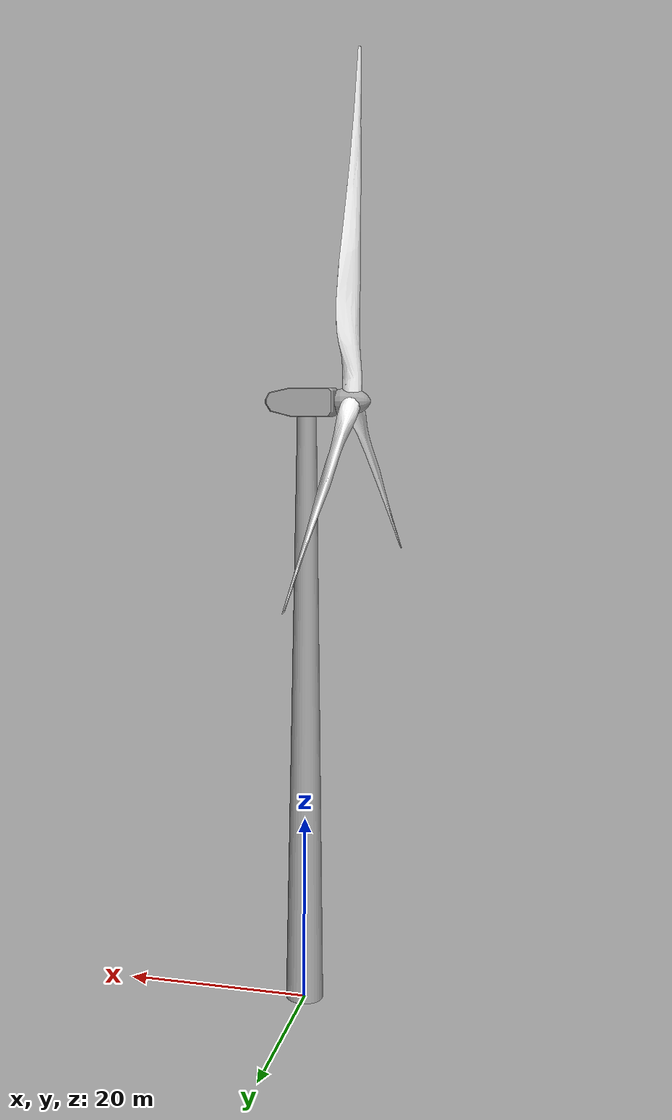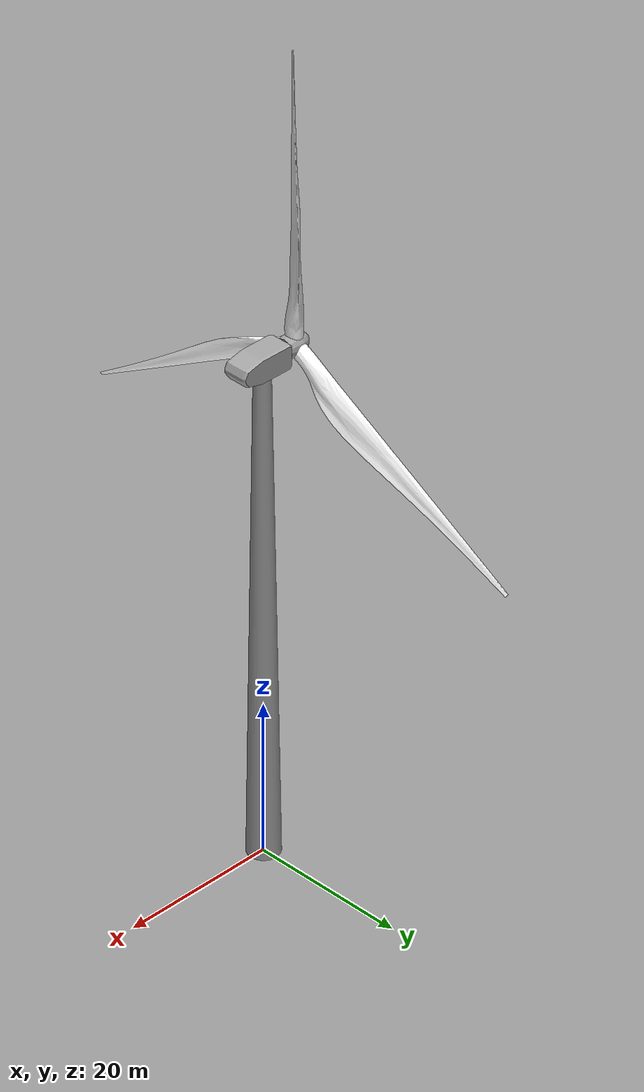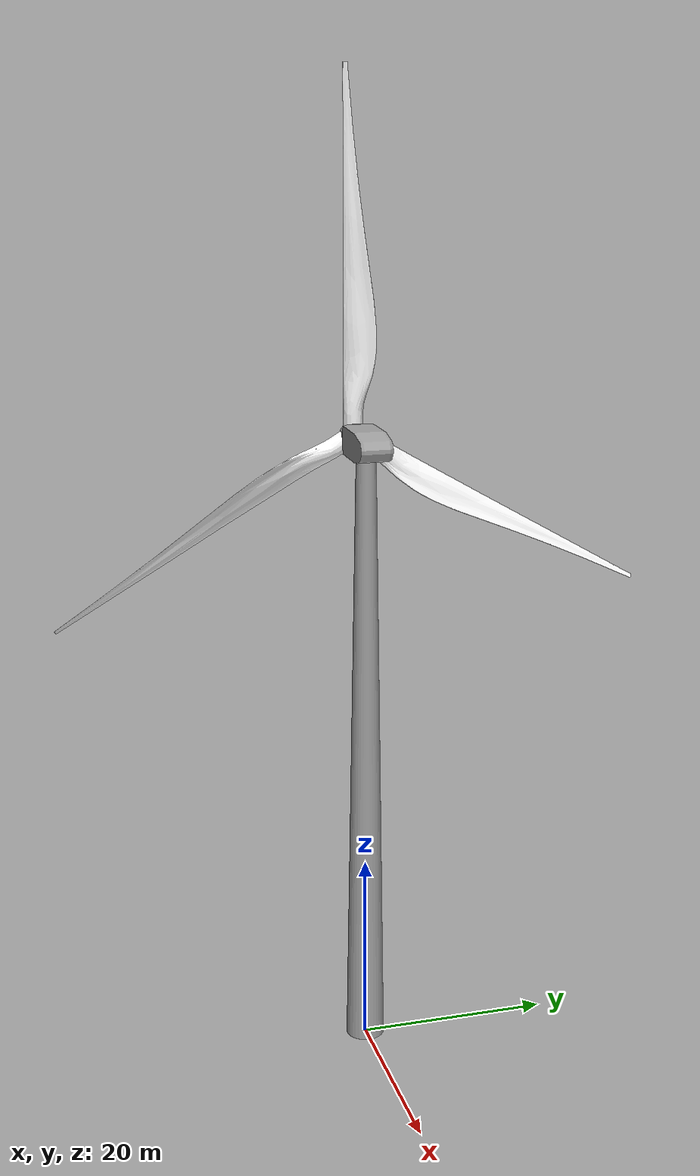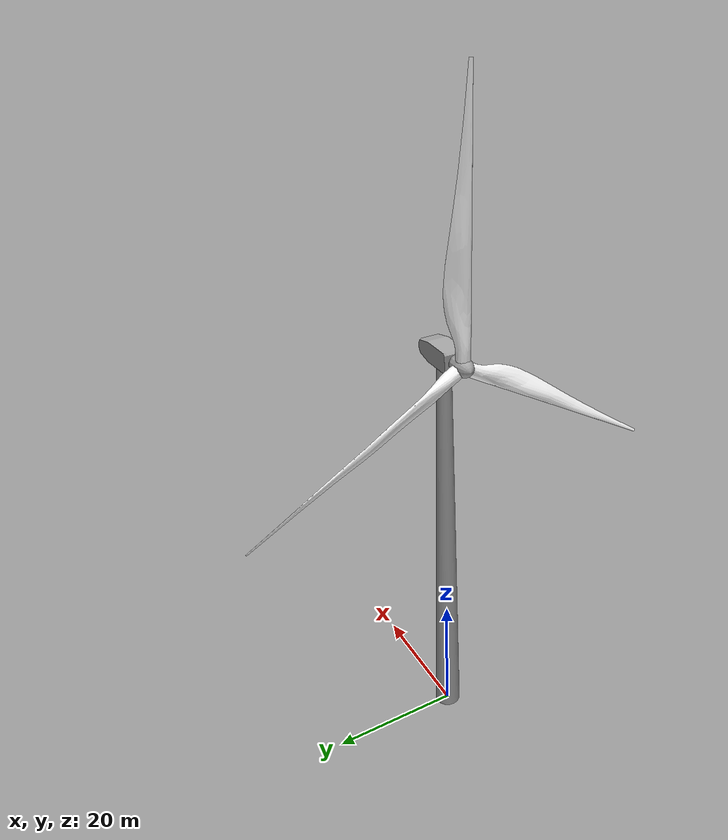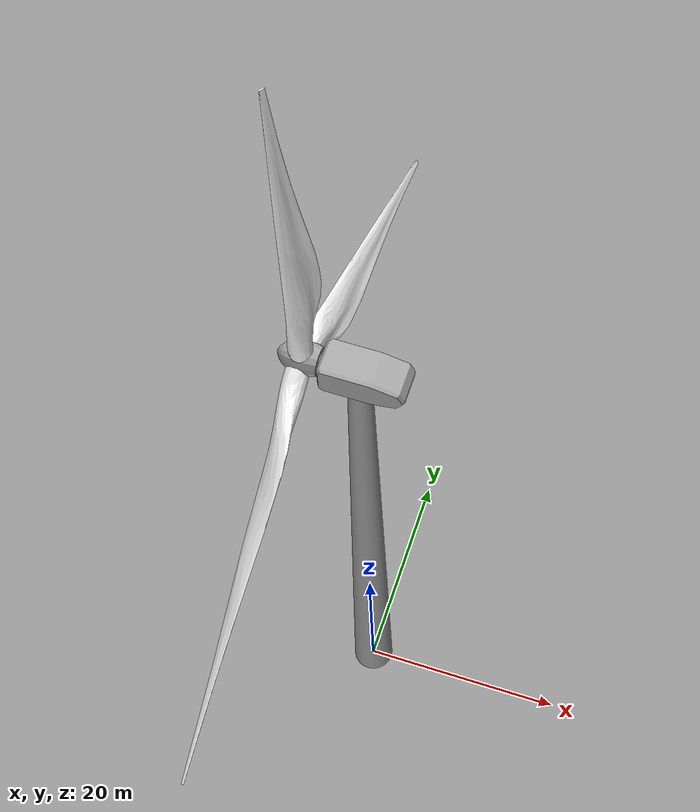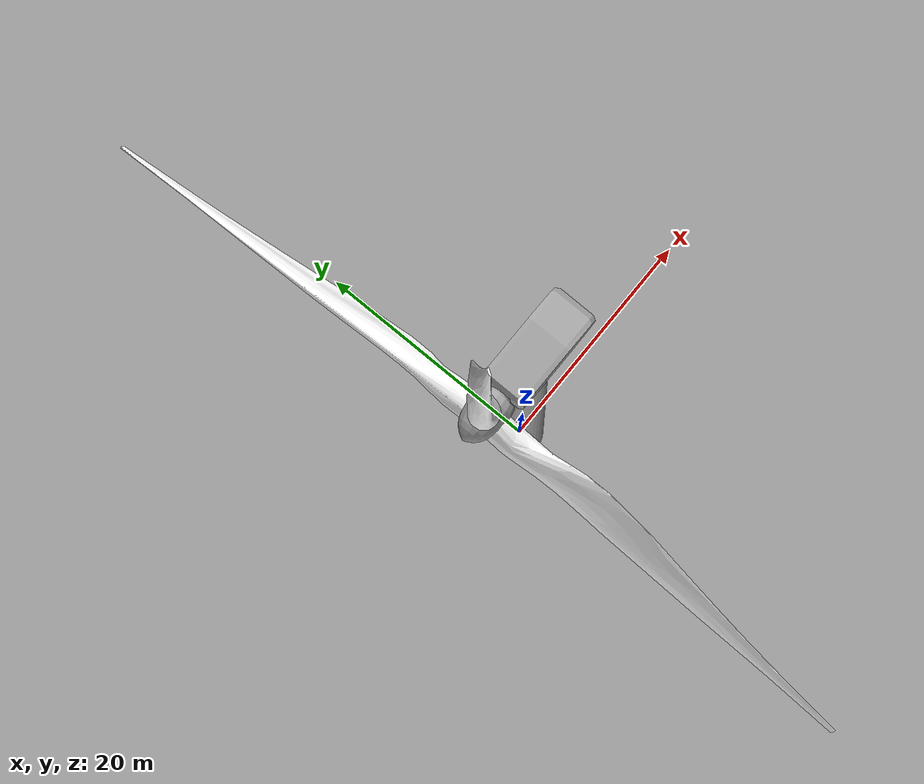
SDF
<sdf version='1.5'>
  <model name='windturbine'>
    <pose>0 0 0 0 0 0</pose>
    <link name='pole_link'>
      <pose>0 0 0 0 0 0</pose>
      <visual name='pole_visual'>
        <geometry>
          <mesh>
            <scale>1 1 1</scale>
            <uri>model://windturbine/meshes/pole.dae</uri>
          </mesh>
        </geometry>
      </visual>
      <collision name="pole_collision">
        <geometry>
          <mesh>
            <scale>1 1 1</scale>
            <uri>model://windturbine/meshes/pole.dae</uri>
          </mesh>
        </geometry>
      </collision>
      <inertial>
        <inertia>
        <ixx>1</ixx>
        <iyy>1</iyy>
        <izz>1</izz>
        </inertia>
        <mass>100</mass>
      </inertial>
    </link>

    <link name='body_link'>
      <pose>0 0 65 0 0 0</pose>
      <visual name='body_visual'>
        <geometry>
          <mesh>
            <scale>1 1 1</scale>
            <uri>model://windturbine/meshes/body.dae</uri>
          </mesh>
        </geometry>
      </visual>
      <collision name="body_collision">
        <geometry>
          <mesh>
            <scale>1 1 1</scale>
            <uri>model://windturbine/meshes/body.dae</uri>
          </mesh>
        </geometry>
      </collision>
      <inertial>
        <inertia>
        <ixx>1</ixx>
        <iyy>1</iyy>
        <izz>1</izz>
        </inertia>
        <mass>10</mass>
      </inertial>
    </link>

    <link name='rotor_link'>
      <pose>-4.8 0 65 0 0 0</pose>
      <visual name='rotor_visual'>
        <geometry>
          <mesh>
            <scale>1 1 1</scale>
            <uri>model://windturbine/meshes/rotor.dae</uri>
          </mesh>
        </geometry>
      </visual>
      <collision name="rotor_collision">
        <geometry>
          <mesh>
            <scale>1 1 1</scale>
            <uri>model://windturbine/meshes/rotor.dae</uri>
          </mesh>
        </geometry>
      </collision>
    </link>

    <link name='blade_1_link'>
      <pose>-4.8 0 65 0 0 0</pose>
      <visual name='blade_1_visual'>
        <pose>0 0 0 0 0 1</pose>
        <geometry>
          <mesh>
            <scale>1 1 1</scale>
            <uri>model://windturbine/meshes/blade.dae</uri>
          </mesh>
        </geometry>
      </visual>
      <collision name="blade_1_collision">
        <pose>0 0 0 0 0 1</pose>
        <geometry>
          <mesh>
            <scale>1 1 1</scale>
            <uri>model://windturbine/meshes/blade.dae</uri>
          </mesh>
        </geometry>
      </collision>
    </link>

    <link name='blade_2_link'>
      <pose>-4.8 0 65 2.094395102 0 0</pose>
      <visual name='blade_2_visual'>
        <pose>0 0 0 0 0 1</pose>
        <geometry>
          <mesh>
            <scale>1 1 1</scale>
            <uri>model://windturbine/meshes/blade.dae</uri>
          </mesh>
        </geometry>
      </visual>
      <collision name="blade_2_collision">
        <pose>0 0 0 0 0 1</pose>
        <geometry>
          <mesh>
            <scale>1 1 1</scale>
            <uri>model://windturbine/meshes/blade.dae</uri>
          </mesh>
        </geometry>
      </collision>
    </link>

    <link name='blade_3_link'>
      <pose>-4.8 0 65 -2.094395102 0 0</pose>
      <visual name='blade_2_visual'>
        <pose>0 0 0 0 0 1</pose>
        <geometry>
          <mesh>
            <scale>1 1 1</scale>
            <uri>model://windturbine/meshes/blade.dae</uri>
          </mesh>
        </geometry>
      </visual>
      <collision name="blade_3_collision">
        <pose>0 0 0 0 0 1</pose>
        <geometry>
          <mesh>
            <scale>1 1 1</scale>
            <uri>model://windturbine/meshes/blade.dae</uri>
          </mesh>
        </geometry>
      </collision>
    </link>

  </model>
</sdf>
